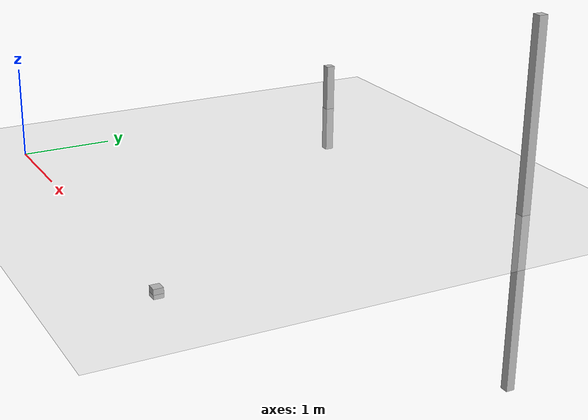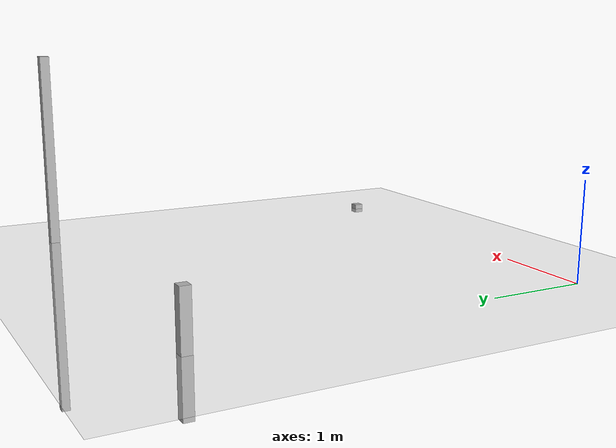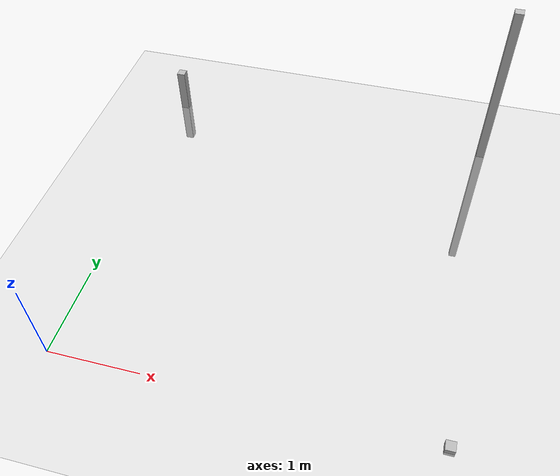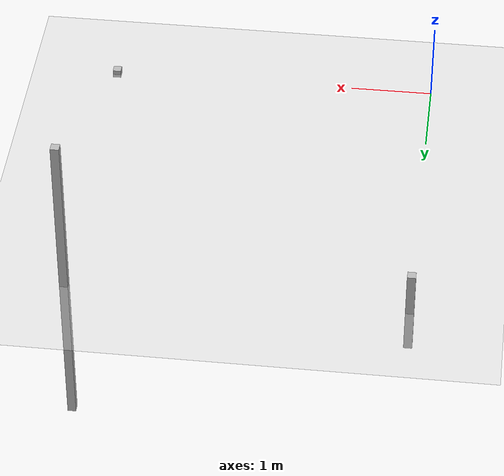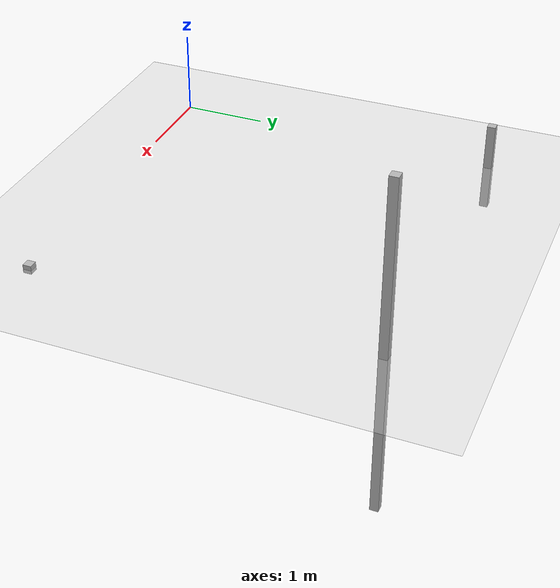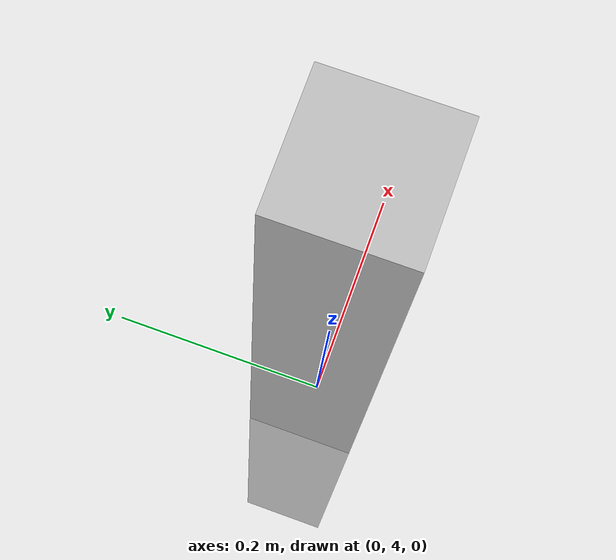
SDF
<sdf version="1.4">
  <world name="default">

    <scene>
      <ambient>0.4 0.4 0.4 1</ambient>
      <background>0.7 0.7 0.7 1</background>
      <shadows>true</shadows>
    </scene>

    <!-- A global light source -->
    <include>
      <uri>model://sun</uri>
    </include>

    <!-- A ground plane -->
    <include>
      <uri>model://ground_plane</uri>
    </include>

    <physics type="ode">
      <real_time_update_rate>1000.0</real_time_update_rate>
      <max_step_size>0.001</max_step_size>
      <real_time_factor>1</real_time_factor>
      <ode>
        <solver>
          <type>quick</type>
          <iters>150</iters>
          <precon_iters>0</precon_iters>
          <sor>1.400000</sor>
          <use_dynamic_moi_rescaling>1</use_dynamic_moi_rescaling>
        </solver>
        <constraints>
          <cfm>0.00001</cfm>
          <erp>0.2</erp>
          <contact_max_correcting_vel>2000.000000</contact_max_correcting_vel>
          <contact_surface_layer>0.01000</contact_surface_layer>
        </constraints>
      </ode>
    </physics>

    <model name='box_1'>
      <pose frame=''>4  0 0 0 -0 0</pose>
      <link name='link'>
        <kinematic>1</kinematic>
        <collision name='collision'>
          <geometry>
            <box>
              <size>0.1 0.1 0.1</size>
            </box>
          </geometry>
          <max_contacts>10</max_contacts>
          <surface>
            <contact>
              <ode/>
            </contact>
            <bounce/>
            <friction>
              <torsional>
                <ode/>
              </torsional>
              <ode/>
            </friction>
          </surface>
        </collision>
        <visual name='visual'>
          <geometry>
            <box>
              <size>0.1 0.1 0.1</size>
            </box>
          </geometry>
        </visual>
        <self_collide>0</self_collide>
        <inertial>
          <inertia>
            <ixx>1</ixx>
            <ixy>0</ixy>
            <ixz>0</ixz>
            <iyy>1</iyy>
            <iyz>0</iyz>
            <izz>1</izz>
          </inertia>
          <mass>1</mass>
        </inertial>
        <gravity>1</gravity>
      </link>
    </model>

    <model name='box_2'>
      <pose frame=''>0 4 0 0 -0 0</pose>
      <link name='link'>
        <kinematic>1</kinematic>
        <collision name='collision'>
          <geometry>
            <box>
              <size>0.1 0.1 1.1</size>
            </box>
          </geometry>
          <max_contacts>10</max_contacts>
          <surface>
            <contact>
              <ode/>
            </contact>
            <bounce/>
            <friction>
              <torsional>
                <ode/>
              </torsional>
              <ode/>
            </friction>
          </surface>
        </collision>
        <visual name='visual'>
          <geometry>
            <box>
              <size>0.1 0.1 1.1</size>
            </box>
          </geometry>
        </visual>
        <self_collide>0</self_collide>
        <inertial>
          <inertia>
            <ixx>1</ixx>
            <ixy>0</ixy>
            <ixz>0</ixz>
            <iyy>1</iyy>
            <iyz>0</iyz>
            <izz>1</izz>
          </inertia>
          <mass>1</mass>
        </inertial>
        <gravity>1</gravity>
      </link>
    </model>

        <model name='box_3'>
      <pose frame=''>4 4 0 0 -0 0</pose>
      <link name='link'>
        <kinematic>1</kinematic>
        <collision name='collision'>
          <geometry>
            <box>
              <size>0.1 0.1 4.1</size>
            </box>
          </geometry>
          <max_contacts>10</max_contacts>
          <surface>
            <contact>
              <ode/>
            </contact>
            <bounce/>
            <friction>
              <torsional>
                <ode/>
              </torsional>
              <ode/>
            </friction>
          </surface>
        </collision>
        <visual name='visual'>
          <geometry>
            <box>
              <size>0.1 0.1 4.1</size>
            </box>
          </geometry>
        </visual>
        <self_collide>0</self_collide>
        <inertial>
          <inertia>
            <ixx>1</ixx>
            <ixy>0</ixy>
            <ixz>0</ixz>
            <iyy>1</iyy>
            <iyz>0</iyz>
            <izz>1</izz>
          </inertia>
          <mass>1</mass>
        </inertial>
        <gravity>1</gravity>
      </link>
    </model>
  </world>

</sdf>
